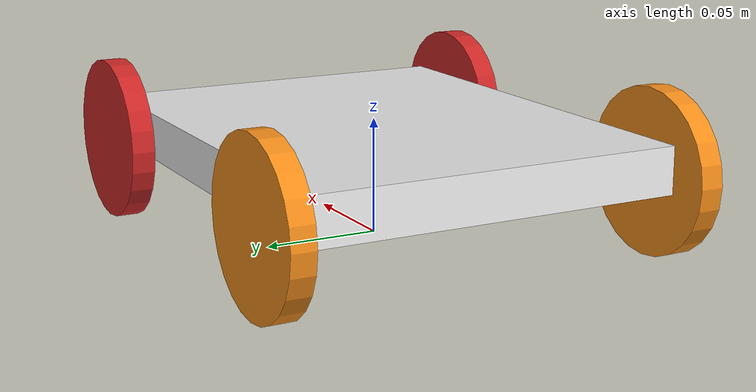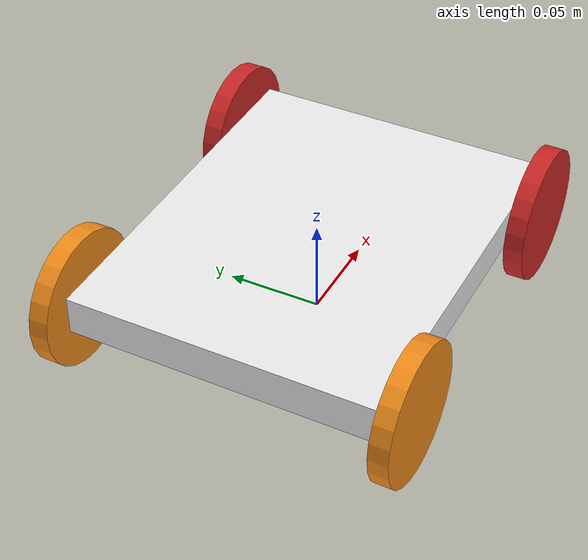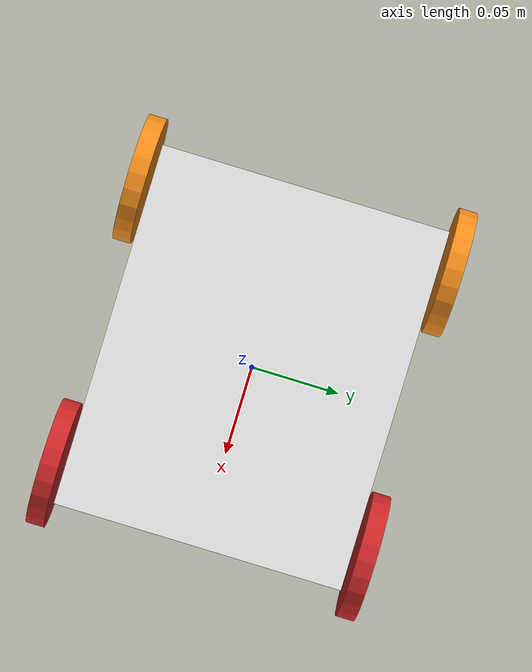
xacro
<?xml version="1.0"?>
<robot name="m4w_robot" xmlns:xacro="http://www.ros.org/wiki/xacro">
<xacro:include filename="$(find mybot_description)/urdf/materials.xacro" />
<xacro:include filename="$(find mybot_description)/urdf/m4w_robot.gazebo" />

  <xacro:property name="base_width" value="0.16"/>
  <xacro:property name="base_len" value="0.2"/>
  <xacro:property name="wheel_radius" value="0.035"/>
  <xacro:property name="base_wheel_gap" value="0.007"/>
  <xacro:property name="wheel_separation" value="0.15"/>
  <xacro:property name="wheel_joint_offset" value="0.02"/>

  <xacro:macro name="box_inertia" params="m w h d">
    <inertial>
      <mass value="${m}"/>
      <inertia ixx="${m / 12.0 * (d*d + h*h)}" ixy="0.0" ixz="0.0" iyy="${m / 12.0 * (w*w + h*h)}" iyz="0.0" izz="${m / 12.0 * (w*w + d*d)}"/>
    </inertial>
  </xacro:macro>

  <link name="base_footprint">
    <xacro:box_inertia m="20" w="0.001" h="0.001" d="0.001"/>
    <visual>
        <origin xyz="0 0 0" rpy="0 0 0" />
        <geometry>
            <box size="0.001 0.001 0.001" />
        </geometry>
	<material name="green"/>
    </visual>
  </link>

  <link name="base_link">
    <xacro:box_inertia m="10" w="${base_len}" h="${base_width}" d="0.02"/>
    <visual>
      <geometry>
        <box size="${base_len} ${base_width} 0.02"/>
      </geometry>
<material name="white"/>
    </visual>
    <collision>
      <geometry>
        <box size="${base_len} ${base_width} 0.02"/>
      </geometry>

    </collision>
  </link>
   <xacro:macro name="cylinder_inertia" params="m r h">
    <inertial>
      <mass value="${m}"/>
      <inertia ixx="${m*(3*r*r+h*h)/12}" ixy = "0" ixz = "0" iyy="${m*(3*r*r+h*h)/12}" iyz = "0" izz="${m*r*r/2}"/>
    </inertial>
  </xacro:macro>

  <xacro:macro name="wheel" params="prefix reflect wheel_joint">
    <link name="${prefix}_wheel">
      <visual>
        <origin xyz="0 0 0" rpy="${pi/2} 0 0"/>
        <geometry>
          <cylinder radius="${wheel_radius}" length="0.01"/>
        </geometry>
      </visual>
      <collision>
        <origin xyz="0 0 0" rpy="${pi/2} 0 0"/>
        <geometry>
          <cylinder radius="${wheel_radius}" length="0.01"/>
        </geometry>
      </collision>
      <xacro:cylinder_inertia m="10" r="${wheel_radius}" h="0.005"/>
    </link>

    <joint name="${prefix}_wheel_joint" type="continuous">
      <axis xyz="0 1 0" rpy="0 0 0" />
      <parent link="base_link"/>
      <child link="${prefix}_wheel"/>
      <origin xyz="${wheel_joint} ${((base_width/2)+base_wheel_gap)*reflect} -0.005" rpy="0 0 0"/>
    </joint>
  </xacro:macro>

  <xacro:wheel prefix="left" reflect="1" wheel_joint="0.08" />
  <xacro:wheel prefix="right" reflect="-1" wheel_joint="0.08"/>
  <xacro:wheel prefix="left_f" reflect="1" wheel_joint="-0.08" />
  <xacro:wheel prefix="right_f" reflect="-1" wheel_joint="-0.08"/>
  <joint name="base_link_joint" type="fixed">
    <origin xyz="0 0 ${wheel_radius + 0.005}" rpy="0 0 0" />
    <parent link="base_footprint"/>
    <child link="base_link" />
  </joint>

</robot>
